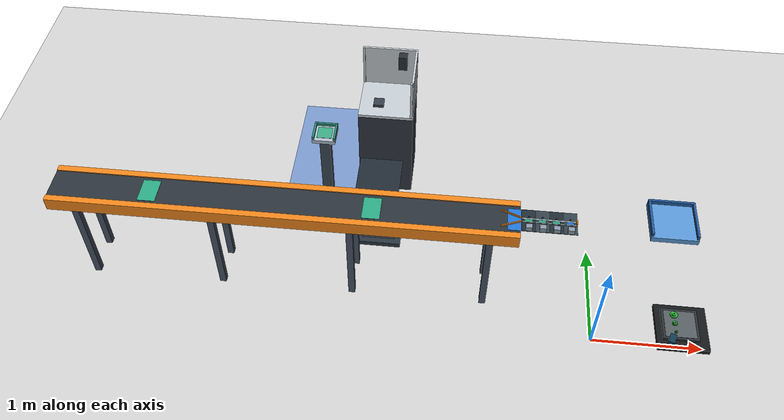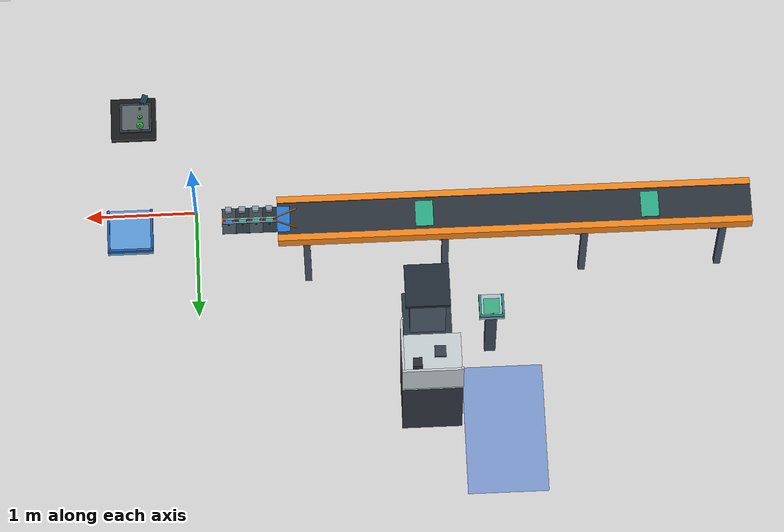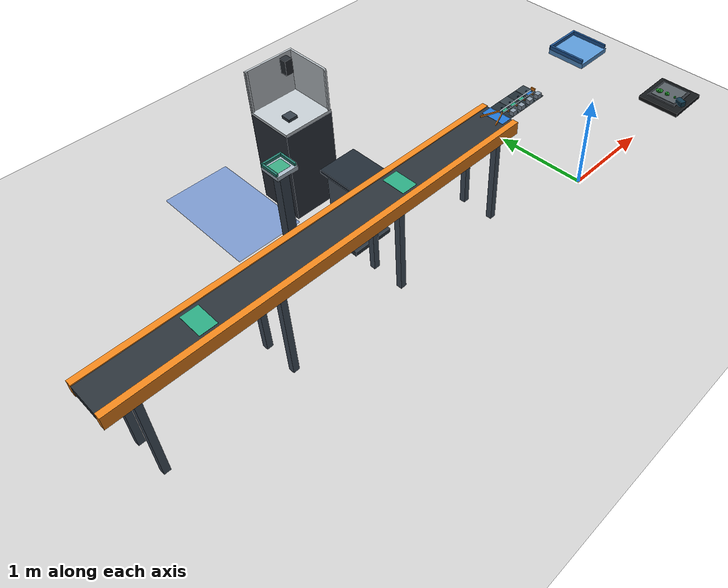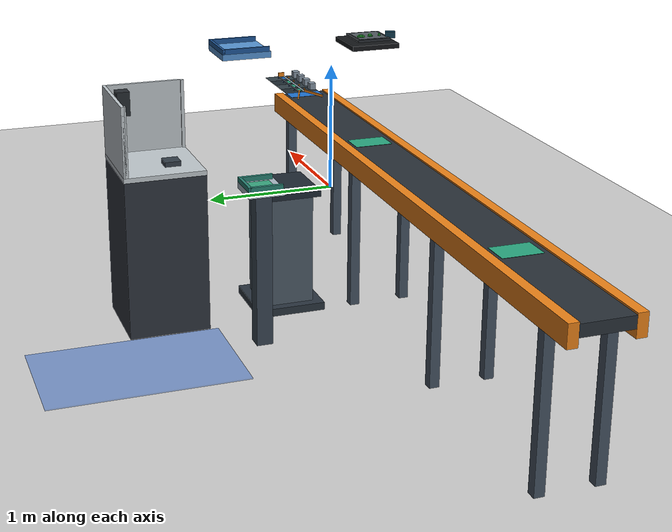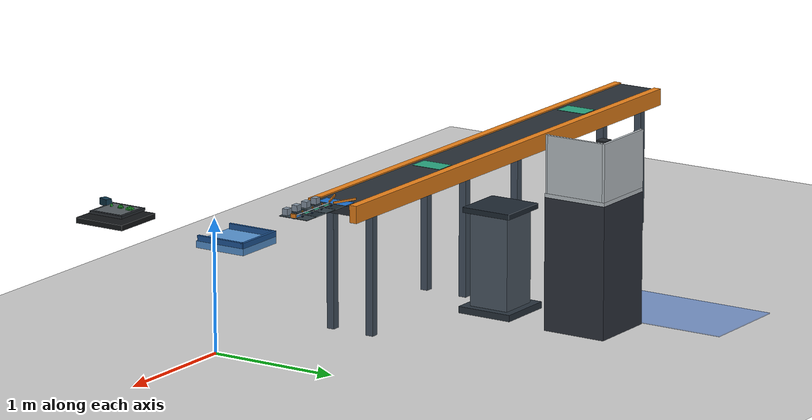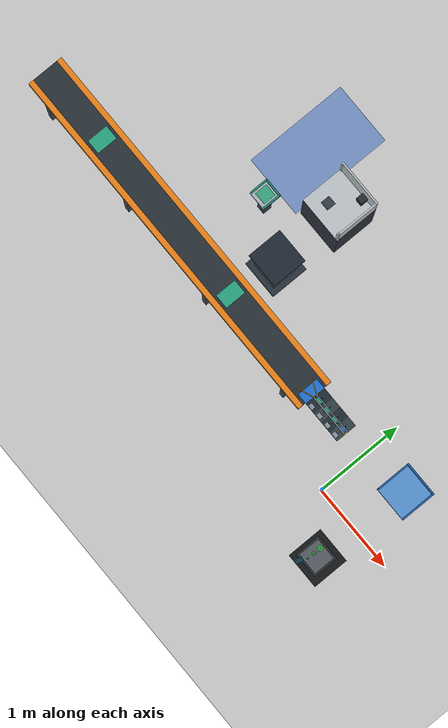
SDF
<sdf version="1.4">
 <world name="default">
  <include><uri>model://ground_plane</uri></include>
  <include><uri>model://sun</uri></include>
  <include>
   <uri>model://bantam_tools_desktop_cnc</uri>
   <name>M2</name>
   <pose>-2.05 1.9 0.0 0.0 0.0 -1.5707963267948966</pose>
  </include>
  <model name="M2_KMR_docking_pose">
   <static>true</static>
   <pose>-2.7 2.20 0.004 0.0 0.0 1.5707963267948966</pose>
   <link name="link">
    <visual name="visual">
     <geometry><box><size>1.19 0.72 0.008</size></box></geometry>
     <material><ambient>0.10 0.35 0.80 0.45</ambient><diffuse>0.10 0.35 0.80 0.45</diffuse></material>
     <transparency>0.55</transparency>
    </visual>
   </link>
  </model>
  <model name="ur5e-2 pedestal">
   <static>true</static>
   <pose>-2.05 1.1 0 0 0 0</pose>
   <link name="link">
    <collision name="column">
     <pose>0 0 0.38 0 0 0</pose>
     <geometry><box><size>0.32 0.32 0.76</size></box></geometry>
    </collision>
    <visual name="column">
     <pose>0 0 0.38 0 0 0</pose>
     <geometry><box><size>0.32 0.32 0.76</size></box></geometry>
     <material><ambient>.3 .35 .4 1</ambient><diffuse>.3 .35 .4 1</diffuse></material>
    </visual>
    <collision name="mounting_plate">
     <pose>0 0 0.78 0 0 0</pose>
     <geometry><box><size>0.4 0.4 0.04</size></box></geometry>
    </collision>
    <visual name="mounting_plate">
     <pose>0 0 0.78 0 0 0</pose>
     <geometry><box><size>0.4 0.4 0.04</size></box></geometry>
     <material><ambient>.12 .16 .2 1</ambient><diffuse>.12 .16 .2 1</diffuse></material>
    </visual>
    <collision name="foot">
     <pose>0 0 0.025 0 0 0</pose>
     <geometry><box><size>0.44 0.44 0.05</size></box></geometry>
    </collision>
    <visual name="foot">
     <pose>0 0 0.025 0 0 0</pose>
     <geometry><box><size>0.44 0.44 0.05</size></box></geometry>
     <material><ambient>.16 .2 .24 1</ambient><diffuse>.16 .2 .24 1</diffuse></material>
    </visual>
   </link>
  </model>
  <model name="M2 staging tray">
   <static>true</static>
   <pose>-2.6 1.4 0 0 0 0</pose>
   <link name="link">
    <collision name="pedestal">
     <pose>0 0 0.48 0 0 0</pose>
     <geometry><box><size>0.10 0.10 0.96</size></box></geometry>
    </collision>
    <visual name="pedestal">
     <pose>0 0 0.48 0 0 0</pose>
     <geometry><box><size>0.10 0.10 0.96</size></box></geometry>
     <material><ambient>.22 .27 .32 1</ambient><diffuse>.22 .27 .32 1</diffuse></material>
    </visual>
    <collision name="surface">
     <pose>0 0 0.98 0 0 0</pose>
     <geometry><box><size>0.22 0.22 0.04</size></box></geometry>
    </collision>
    <visual name="surface">
     <pose>0 0 0.98 0 0 0</pose>
     <geometry><box><size>0.22 0.22 0.04</size></box></geometry>
     <material><ambient>.66 .72 .77 1</ambient><diffuse>.66 .72 .77 1</diffuse></material>
    </visual>
    <collision name="rear_edge">
     <pose>0 0.10 1.015 0 0 0</pose>
     <geometry><box><size>0.22 0.02 0.03</size></box></geometry>
    </collision>
    <visual name="rear_edge">
     <pose>0 0.10 1.015 0 0 0</pose>
     <geometry><box><size>0.22 0.02 0.03</size></box></geometry>
     <material><ambient>.15 .5 .44 1</ambient><diffuse>.15 .5 .44 1</diffuse></material>
    </visual>
    <collision name="left_edge">
     <pose>-0.10 0 1.015 0 0 0</pose>
     <geometry><box><size>0.02 0.20 0.03</size></box></geometry>
    </collision>
    <visual name="left_edge">
     <pose>-0.10 0 1.015 0 0 0</pose>
     <geometry><box><size>0.02 0.20 0.03</size></box></geometry>
     <material><ambient>.15 .5 .44 1</ambient><diffuse>.15 .5 .44 1</diffuse></material>
    </visual>
    <collision name="right_edge">
     <pose>0.10 0 1.015 0 0 0</pose>
     <geometry><box><size>0.02 0.20 0.03</size></box></geometry>
    </collision>
    <visual name="right_edge">
     <pose>0.10 0 1.015 0 0 0</pose>
     <geometry><box><size>0.02 0.20 0.03</size></box></geometry>
     <material><ambient>.15 .5 .44 1</ambient><diffuse>.15 .5 .44 1</diffuse></material>
    </visual>
    <visual name="capacity_one_nest">
     <pose>0 0 1.001 0 0 0</pose>
     <geometry><box><size>0.14 0.14 0.002</size></box></geometry>
     <material><ambient>.22 .65 .5 1</ambient><diffuse>.22 .65 .5 1</diffuse></material>
    </visual>
   </link>
  </model>
  <model name="Conveyor">
   <static>true</static>
   <pose>-2.85 0.5 0 0 0 0</pose>
   <link name="link">
    <collision name="belt">
     <pose>0 0 0.98 0 0 0</pose>
     <geometry><box><size>4.2 0.3 0.07</size></box></geometry>
    </collision>
    <visual name="belt">
     <pose>0 0 0.98 0 0 0</pose>
     <geometry><box><size>4.2 0.3 0.07</size></box></geometry>
     <material><ambient>.16 .19 .22 1</ambient><diffuse>.16 .19 .22 1</diffuse></material>
    </visual>
    <collision name="frame_0">
     <pose>0 -0.18 0.96 0 0 0</pose>
     <geometry><box><size>4.2 0.06 0.13</size></box></geometry>
    </collision>
    <visual name="frame_0">
     <pose>0 -0.18 0.96 0 0 0</pose>
     <geometry><box><size>4.2 0.06 0.13</size></box></geometry>
     <material><ambient>.92 .51 .1 1</ambient><diffuse>.92 .51 .1 1</diffuse></material>
    </visual>
    <collision name="frame_1">
     <pose>0 0.18 0.96 0 0 0</pose>
     <geometry><box><size>4.2 0.06 0.13</size></box></geometry>
    </collision>
    <visual name="frame_1">
     <pose>0 0.18 0.96 0 0 0</pose>
     <geometry><box><size>4.2 0.06 0.13</size></box></geometry>
     <material><ambient>.92 .51 .1 1</ambient><diffuse>.92 .51 .1 1</diffuse></material>
    </visual>
    <collision name="leg_0_0">
     <pose>-1.85 -0.17 0.46 0 0 0</pose>
     <geometry><box><size>0.06 0.06 0.92</size></box></geometry>
    </collision>
    <visual name="leg_0_0">
     <pose>-1.85 -0.17 0.46 0 0 0</pose>
     <geometry><box><size>0.06 0.06 0.92</size></box></geometry>
     <material><ambient>.27 .32 .38 1</ambient><diffuse>.27 .32 .38 1</diffuse></material>
    </visual>
    <collision name="leg_0_1">
     <pose>-1.85 0.17 0.46 0 0 0</pose>
     <geometry><box><size>0.06 0.06 0.92</size></box></geometry>
    </collision>
    <visual name="leg_0_1">
     <pose>-1.85 0.17 0.46 0 0 0</pose>
     <geometry><box><size>0.06 0.06 0.92</size></box></geometry>
     <material><ambient>.27 .32 .38 1</ambient><diffuse>.27 .32 .38 1</diffuse></material>
    </visual>
    <collision name="leg_1_0">
     <pose>-0.62 -0.17 0.46 0 0 0</pose>
     <geometry><box><size>0.06 0.06 0.92</size></box></geometry>
    </collision>
    <visual name="leg_1_0">
     <pose>-0.62 -0.17 0.46 0 0 0</pose>
     <geometry><box><size>0.06 0.06 0.92</size></box></geometry>
     <material><ambient>.27 .32 .38 1</ambient><diffuse>.27 .32 .38 1</diffuse></material>
    </visual>
    <collision name="leg_1_1">
     <pose>-0.62 0.17 0.46 0 0 0</pose>
     <geometry><box><size>0.06 0.06 0.92</size></box></geometry>
    </collision>
    <visual name="leg_1_1">
     <pose>-0.62 0.17 0.46 0 0 0</pose>
     <geometry><box><size>0.06 0.06 0.92</size></box></geometry>
     <material><ambient>.27 .32 .38 1</ambient><diffuse>.27 .32 .38 1</diffuse></material>
    </visual>
    <collision name="leg_2_0">
     <pose>0.62 -0.17 0.46 0 0 0</pose>
     <geometry><box><size>0.06 0.06 0.92</size></box></geometry>
    </collision>
    <visual name="leg_2_0">
     <pose>0.62 -0.17 0.46 0 0 0</pose>
     <geometry><box><size>0.06 0.06 0.92</size></box></geometry>
     <material><ambient>.27 .32 .38 1</ambient><diffuse>.27 .32 .38 1</diffuse></material>
    </visual>
    <collision name="leg_2_1">
     <pose>0.62 0.17 0.46 0 0 0</pose>
     <geometry><box><size>0.06 0.06 0.92</size></box></geometry>
    </collision>
    <visual name="leg_2_1">
     <pose>0.62 0.17 0.46 0 0 0</pose>
     <geometry><box><size>0.06 0.06 0.92</size></box></geometry>
     <material><ambient>.27 .32 .38 1</ambient><diffuse>.27 .32 .38 1</diffuse></material>
    </visual>
    <collision name="leg_3_0">
     <pose>1.85 -0.17 0.46 0 0 0</pose>
     <geometry><box><size>0.06 0.06 0.92</size></box></geometry>
    </collision>
    <visual name="leg_3_0">
     <pose>1.85 -0.17 0.46 0 0 0</pose>
     <geometry><box><size>0.06 0.06 0.92</size></box></geometry>
     <material><ambient>.27 .32 .38 1</ambient><diffuse>.27 .32 .38 1</diffuse></material>
    </visual>
    <collision name="leg_3_1">
     <pose>1.85 0.17 0.46 0 0 0</pose>
     <geometry><box><size>0.06 0.06 0.92</size></box></geometry>
    </collision>
    <visual name="leg_3_1">
     <pose>1.85 0.17 0.46 0 0 0</pose>
     <geometry><box><size>0.06 0.06 0.92</size></box></geometry>
     <material><ambient>.27 .32 .38 1</ambient><diffuse>.27 .32 .38 1</diffuse></material>
    </visual>
    <visual name="loading_position_1">
     <pose>-1.2 0 1.016 0 0 0</pose>
     <geometry><box><size>0.16 0.24 0.002</size></box></geometry>
     <material><ambient>.16 .65 .5 1</ambient><diffuse>.16 .65 .5 1</diffuse></material>
    </visual>
    <visual name="loading_position_2">
     <pose>0.8 0 1.016 0 0 0</pose>
     <geometry><box><size>0.16 0.24 0.002</size></box></geometry>
     <material><ambient>.16 .65 .5 1</ambient><diffuse>.16 .65 .5 1</diffuse></material>
    </visual>
    <visual name="output_nest">
     <pose>2.07 0 1.015 0 0 0</pose>
     <geometry><box><size>0.16 0.24 0.002</size></box></geometry>
     <material><ambient>.12 .45 .82 1</ambient><diffuse>.12 .45 .82 1</diffuse></material>
    </visual>
   </link>
  </model>
  <model name="Buffer For Machined parts">
   <static>true</static>
   <pose>-0.50 0.50 1.015 0 0 0</pose>
   <link name="link">
    <collision name="zone_1_belt">
     <pose>-.18 0 0 0 0 0</pose>
     <geometry><box><size>.119 .24 .004</size></box></geometry>
    </collision>
    <visual name="zone_1_belt">
     <pose>-.18 0 0 0 0 0</pose>
     <geometry><box><size>.119 .24 .004</size></box></geometry>
     <material><ambient>.12 .17 .20 1</ambient><diffuse>.12 .17 .20 1</diffuse></material>
    </visual>
    <collision name="zone_2_belt">
     <pose>-.06 0 0 0 0 0</pose>
     <geometry><box><size>.119 .24 .004</size></box></geometry>
    </collision>
    <visual name="zone_2_belt">
     <pose>-.06 0 0 0 0 0</pose>
     <geometry><box><size>.119 .24 .004</size></box></geometry>
     <material><ambient>.20 .25 .28 1</ambient><diffuse>.20 .25 .28 1</diffuse></material>
    </visual>
    <collision name="zone_3_belt">
     <pose>.06 0 0 0 0 0</pose>
     <geometry><box><size>.119 .24 .004</size></box></geometry>
    </collision>
    <visual name="zone_3_belt">
     <pose>.06 0 0 0 0 0</pose>
     <geometry><box><size>.119 .24 .004</size></box></geometry>
     <material><ambient>.12 .17 .20 1</ambient><diffuse>.12 .17 .20 1</diffuse></material>
    </visual>
    <collision name="zone_4_belt">
     <pose>.18 0 0 0 0 0</pose>
     <geometry><box><size>.119 .24 .004</size></box></geometry>
    </collision>
    <visual name="zone_4_belt">
     <pose>.18 0 0 0 0 0</pose>
     <geometry><box><size>.119 .24 .004</size></box></geometry>
     <material><ambient>.20 .25 .28 1</ambient><diffuse>.20 .25 .28 1</diffuse></material>
    </visual>
    <collision name="guide_left">
     <pose>0 .019 .003 0.25 0 0</pose>
     <geometry><box><size>.48 .012 .004</size></box></geometry>
    </collision>
    <visual name="guide_left">
     <pose>0 .019 .003 0.25 0 0</pose>
     <geometry><box><size>.48 .012 .004</size></box></geometry>
     <material><ambient>.62 .68 .72 1</ambient><diffuse>.62 .68 .72 1</diffuse></material>
    </visual>
    <collision name="guide_right">
     <pose>0 -.019 .003 -0.25 0 0</pose>
     <geometry><box><size>.48 .012 .004</size></box></geometry>
    </collision>
    <visual name="guide_right">
     <pose>0 -.019 .003 -0.25 0 0</pose>
     <geometry><box><size>.48 .012 .004</size></box></geometry>
     <material><ambient>.62 .68 .72 1</ambient><diffuse>.62 .68 .72 1</diffuse></material>
    </visual>
    <visual name="zone_1_drive">
     <pose>-.18 -.095 .025 0 0 0</pose>
     <geometry><box><size>.055 .045 .046</size></box></geometry>
     <material><ambient>.52 .58 .64 1</ambient><diffuse>.52 .58 .64 1</diffuse></material>
    </visual>
    <visual name="zone_2_drive">
     <pose>-.06 -.095 .025 0 0 0</pose>
     <geometry><box><size>.055 .045 .046</size></box></geometry>
     <material><ambient>.52 .58 .64 1</ambient><diffuse>.52 .58 .64 1</diffuse></material>
    </visual>
    <visual name="zone_3_drive">
     <pose>.06 -.095 .025 0 0 0</pose>
     <geometry><box><size>.055 .045 .046</size></box></geometry>
     <material><ambient>.52 .58 .64 1</ambient><diffuse>.52 .58 .64 1</diffuse></material>
    </visual>
    <visual name="zone_4_drive">
     <pose>.18 -.095 .025 0 0 0</pose>
     <geometry><box><size>.055 .045 .046</size></box></geometry>
     <material><ambient>.52 .58 .64 1</ambient><diffuse>.52 .58 .64 1</diffuse></material>
    </visual>
    <visual name="zone_1_photoeye">
     <pose>-.18 .040 .004 0 0 0</pose>
     <geometry><box><size>.014 .008 .012</size></box></geometry>
     <material><ambient>.12 .22 .36 1</ambient><diffuse>.12 .22 .36 1</diffuse></material>
    </visual>
    <visual name="zone_2_photoeye">
     <pose>-.06 .040 .004 0 0 0</pose>
     <geometry><box><size>.014 .008 .012</size></box></geometry>
     <material><ambient>.12 .22 .36 1</ambient><diffuse>.12 .22 .36 1</diffuse></material>
    </visual>
    <visual name="zone_3_photoeye">
     <pose>.06 .040 .004 0 0 0</pose>
     <geometry><box><size>.014 .008 .012</size></box></geometry>
     <material><ambient>.12 .22 .36 1</ambient><diffuse>.12 .22 .36 1</diffuse></material>
    </visual>
    <visual name="zone_4_photoeye">
     <pose>.18 .040 .004 0 0 0</pose>
     <geometry><box><size>.014 .008 .012</size></box></geometry>
     <material><ambient>.12 .22 .36 1</ambient><diffuse>.12 .22 .36 1</diffuse></material>
    </visual>
    <visual name="zone_1_reflector">
     <pose>-.18 -.040 .004 0 0 0</pose>
     <geometry><box><size>.014 .008 .012</size></box></geometry>
     <material><ambient>.92 .51 .1 1</ambient><diffuse>.92 .51 .1 1</diffuse></material>
    </visual>
    <visual name="zone_2_reflector">
     <pose>-.06 -.040 .004 0 0 0</pose>
     <geometry><box><size>.014 .008 .012</size></box></geometry>
     <material><ambient>.92 .51 .1 1</ambient><diffuse>.92 .51 .1 1</diffuse></material>
    </visual>
    <visual name="zone_3_reflector">
     <pose>.06 -.040 .004 0 0 0</pose>
     <geometry><box><size>.014 .008 .012</size></box></geometry>
     <material><ambient>.92 .51 .1 1</ambient><diffuse>.92 .51 .1 1</diffuse></material>
    </visual>
    <visual name="zone_4_reflector">
     <pose>.18 -.040 .004 0 0 0</pose>
     <geometry><box><size>.014 .008 .012</size></box></geometry>
     <material><ambient>.92 .51 .1 1</ambient><diffuse>.92 .51 .1 1</diffuse></material>
    </visual>
    <collision name="zone_1_stop">
     <pose>-.133 0 -.003 0 0 0</pose>
     <geometry><box><size>.004 .026 .008</size></box></geometry>
    </collision>
    <visual name="zone_1_stop">
     <pose>-.133 0 -.003 0 0 0</pose>
     <geometry><box><size>.004 .026 .008</size></box></geometry>
     <material><ambient>.52 .58 .64 1</ambient><diffuse>.52 .58 .64 1</diffuse></material>
    </visual>
    <collision name="zone_2_stop">
     <pose>-.013 0 -.003 0 0 0</pose>
     <geometry><box><size>.004 .026 .008</size></box></geometry>
    </collision>
    <visual name="zone_2_stop">
     <pose>-.013 0 -.003 0 0 0</pose>
     <geometry><box><size>.004 .026 .008</size></box></geometry>
     <material><ambient>.52 .58 .64 1</ambient><diffuse>.52 .58 .64 1</diffuse></material>
    </visual>
    <collision name="zone_3_stop">
     <pose>.107 0 -.003 0 0 0</pose>
     <geometry><box><size>.004 .026 .008</size></box></geometry>
    </collision>
    <visual name="zone_3_stop">
     <pose>.107 0 -.003 0 0 0</pose>
     <geometry><box><size>.004 .026 .008</size></box></geometry>
     <material><ambient>.52 .58 .64 1</ambient><diffuse>.52 .58 .64 1</diffuse></material>
    </visual>
    <collision name="zone_4_stop">
     <pose>.227 0 -.003 0 0 0</pose>
     <geometry><box><size>.004 .026 .008</size></box></geometry>
    </collision>
    <visual name="zone_4_stop">
     <pose>.227 0 -.003 0 0 0</pose>
     <geometry><box><size>.004 .026 .008</size></box></geometry>
     <material><ambient>.52 .58 .64 1</ambient><diffuse>.52 .58 .64 1</diffuse></material>
    </visual>
    <collision name="downstream_stop">
     <pose>.235 0 .017 0 0 0</pose>
     <geometry><box><size>.01 .045 .03</size></box></geometry>
    </collision>
    <visual name="downstream_stop">
     <pose>.235 0 .017 0 0 0</pose>
     <geometry><box><size>.01 .045 .03</size></box></geometry>
     <material><ambient>.92 .51 .1 1</ambient><diffuse>.92 .51 .1 1</diffuse></material>
    </visual>
    <collision name="transfer_plate">
     <pose>-0.244803883865 0 0.000019419324 0 -0.197395559850 0</pose>
     <geometry><box><size>0.010198039027 .24 .002</size></box></geometry>
    </collision>
    <visual name="transfer_plate">
     <pose>-0.244803883865 0 0.000019419324 0 -0.197395559850 0</pose>
     <geometry><box><size>0.010198039027 .24 .002</size></box></geometry>
     <material><ambient>.48 .52 .56 1</ambient><diffuse>.48 .52 .56 1</diffuse></material>
    </visual>
    <collision name="infeed_guide_left">
     <pose>-.33 .0545 .010 0 0 -.375912</pose>
     <geometry><box><size>.19352 .008 .016</size></box></geometry>
    </collision>
    <visual name="infeed_guide_left">
     <pose>-.33 .0545 .010 0 0 -.375912</pose>
     <geometry><box><size>.19352 .008 .016</size></box></geometry>
     <material><ambient>.92 .51 .1 1</ambient><diffuse>.92 .51 .1 1</diffuse></material>
    </visual>
    <collision name="infeed_guide_right">
     <pose>-.33 -.0545 .010 0 0 .375912</pose>
     <geometry><box><size>.19352 .008 .016</size></box></geometry>
    </collision>
    <visual name="infeed_guide_right">
     <pose>-.33 -.0545 .010 0 0 .375912</pose>
     <geometry><box><size>.19352 .008 .016</size></box></geometry>
     <material><ambient>.92 .51 .1 1</ambient><diffuse>.92 .51 .1 1</diffuse></material>
    </visual>
    <visual name="waiting_position_1">
     <pose>-0.18 0 .00215 0 0 0</pose>
     <geometry><box><size>.065 .026 .0003</size></box></geometry>
     <material><ambient>.16 .65 .50 1</ambient><diffuse>.16 .65 .50 1</diffuse></material>
    </visual>
    <visual name="waiting_position_2">
     <pose>-0.06 0 .00215 0 0 0</pose>
     <geometry><box><size>.065 .026 .0003</size></box></geometry>
     <material><ambient>.16 .65 .50 1</ambient><diffuse>.16 .65 .50 1</diffuse></material>
    </visual>
    <visual name="waiting_position_3">
     <pose>0.06 0 .00215 0 0 0</pose>
     <geometry><box><size>.065 .026 .0003</size></box></geometry>
     <material><ambient>.16 .65 .50 1</ambient><diffuse>.16 .65 .50 1</diffuse></material>
    </visual>
    <visual name="waiting_position_4">
     <pose>0.18 0 .00215 0 0 0</pose>
     <geometry><box><size>.065 .026 .0003</size></box></geometry>
     <material><ambient>.12 .45 .82 1</ambient><diffuse>.12 .45 .82 1</diffuse></material>
    </visual>
   </link>
  </model>
  <model name="assembly_board_v1">
   <static>true</static>
   <pose>0 0 1.0239916 0 0 0</pose>
   <link name="link">
    <gravity>false</gravity>
    <inertial>
     <mass>0.40</mass>
     <inertia><ixx>0.00834</ixx><iyy>0.00834</iyy><izz>0.01667</izz><ixy>0</ixy><ixz>0</ixz><iyz>0</iyz></inertia>
    </inertial>
   </link>
  </model>
  <model name="cam_mk4_2">
   <static>true</static>
   <pose>0.50 -0.50 1.75 0 1.5708 0</pose>
   <link name="link">
    <visual name="visual">
     <geometry><box><size>0.03 0.03 0.03</size></box></geometry>
     <material>
      <script><uri>file://media/materials/scripts/gazebo.material</uri><name>Gazebo/Blue</name></script>
     </material>
     <transparency>1.0</transparency>
    </visual>
    <sensor type="depth" name="depth_camera">
     <update_rate>15.0</update_rate>
     <camera>
      <horizontal_fov>0.8</horizontal_fov>
      <image><width>640</width><height>480</height><format>R8G8B8</format></image>
      <clip><near>0.05</near><far>5.0</far></clip>
     </camera>
     <plugin name="camera_controller" filename="libgazebo_ros_camera.so">
      <ros><namespace>cam_mk4_2</namespace></ros>
      <camera_name>cam_mk4_2</camera_name>
      <frame_name>cam_mk4_2_link</frame_name>
      <min_depth>0.05</min_depth>
     </plugin>
    </sensor>
   </link>
  </model>
  <model name="cam_assembly">
   <static>true</static>
   <pose>0 0 1.55 0 1.5708 0</pose>
   <link name="link">
    <visual name="visual">
     <geometry><box><size>0.03 0.03 0.03</size></box></geometry>
     <material>
      <script><uri>file://media/materials/scripts/gazebo.material</uri><name>Gazebo/Red</name></script>
     </material>
     <transparency>1.0</transparency>
    </visual>
    <sensor type="depth" name="depth_camera">
     <update_rate>15.0</update_rate>
     <camera>
      <horizontal_fov>0.95</horizontal_fov>
      <image><width>640</width><height>480</height><format>R8G8B8</format></image>
      <clip><near>0.05</near><far>2.0</far></clip>
     </camera>
     <plugin name="camera_controller" filename="libgazebo_ros_camera.so">
      <ros><namespace>cam_assembly</namespace></ros>
      <camera_name>cam_assembly</camera_name>
      <frame_name>cam_assembly_link</frame_name>
     </plugin>
    </sensor>
   </link>
  </model>
  <model name="Exit">
   <static>true</static>
   <pose>0.55 0.58 1.04 0 0 0</pose>
   <link name="link">
    <collision name="surface"><geometry><box><size>0.4 0.4 0.05</size></box></geometry></collision>
    <visual name="surface">
     <geometry><box><size>0.4 0.4 0.05</size></box></geometry>
     <material><ambient>.34 .58 .82 1</ambient><diffuse>.34 .58 .82 1</diffuse></material>
    </visual>
    <collision name="rear_edge">
     <pose>0 0.19 0.045 0 0 0</pose>
     <geometry><box><size>0.4 0.02 0.04</size></box></geometry>
    </collision>
    <visual name="rear_edge">
     <pose>0 0.19 0.045 0 0 0</pose>
     <geometry><box><size>0.4 0.02 0.04</size></box></geometry>
     <material><ambient>.12 .34 .60 1</ambient><diffuse>.12 .34 .60 1</diffuse></material>
    </visual>
    <collision name="side_edge_1">
     <pose>-0.19 0 0.045 0 0 0</pose>
     <geometry><box><size>0.02 0.38 0.04</size></box></geometry>
    </collision>
    <visual name="side_edge_1">
     <pose>-0.19 0 0.045 0 0 0</pose>
     <geometry><box><size>0.02 0.38 0.04</size></box></geometry>
     <material><ambient>.12 .34 .60 1</ambient><diffuse>.12 .34 .60 1</diffuse></material>
    </visual>
    <collision name="side_edge_2">
     <pose>0.19 0 0.045 0 0 0</pose>
     <geometry><box><size>0.02 0.38 0.04</size></box></geometry>
    </collision>
    <visual name="side_edge_2">
     <pose>0.19 0 0.045 0 0 0</pose>
     <geometry><box><size>0.02 0.38 0.04</size></box></geometry>
     <material><ambient>.12 .34 .60 1</ambient><diffuse>.12 .34 .60 1</diffuse></material>
    </visual>
   </link>
  </model>
  <include>
   <uri>model://prusa_mk4_2</uri>
   <name>prusa_mk4_2</name>
   <pose>0.50 -0.50 1.04 0 0 -1.57079632679</pose>
  </include>
  <model name="gear_small">
   <pose>0.44 -0.58 1.11 0 0 0</pose>
   <link name="link">
    <inertial>
     <mass>0.05</mass>
     <inertia>
      <ixx>3.1623847563e-06</ixx>
      <ixy>0</ixy>
      <ixz>0</ixz>
      <iyy>3.1623847563e-06</iyy>
      <iyz>0</iyz>
      <izz>2.9914361793e-06</izz>
     </inertia>
    </inertial>
    <collision name="collision">
     <max_contacts>64</max_contacts>
     <pose>-0.21316049955 0.1518883057 0.0697159157 3.141592653589793 0 0</pose>
     <geometry>
      <mesh><uri>model://gear_small/meshes/Gear_Small_contact.STL</uri><scale>0.001 0.001 0.001</scale></mesh>
     </geometry>
     <surface>
      <friction><ode><mu>0.5</mu><mu2>0.5</mu2></ode></friction>
      <contact>
       <category_bitmask>256</category_bitmask>
       <collide_bitmask>65279</collide_bitmask>
       <ode><kp>100000.0</kp><kd>1000.0</kd><max_vel>0.001</max_vel><min_depth>0.0</min_depth></ode>
      </contact>
     </surface>
    </collision>
    <visual name="visual">
     <pose>-0.21316049955 0.1518883057 0.0697159157 3.141592653589793 0 0</pose>
     <geometry>
      <mesh><uri>model://gear_small/meshes/Gear_Small.STL</uri><scale>0.001 0.001 0.001</scale></mesh>
     </geometry>
     <material>
      <script><uri>file://media/materials/scripts/gazebo.material</uri><name>Gazebo/Green</name></script>
     </material>
    </visual>
   </link>
  </model>
  <model name="gear_medium">
   <pose>0.44 -0.50 1.11 0 0 0</pose>
   <link name="link">
    <inertial>
     <mass>0.10</mass>
     <inertia>
      <ixx>1.4356194535e-05</ixx>
      <ixy>0</ixy>
      <ixz>0</ixz>
      <iyy>1.4356194535e-05</iyy>
      <iyz>0</iyz>
      <izz>2.2045722402e-05</izz>
     </inertia>
    </inertial>
    <collision name="collision">
     <max_contacts>64</max_contacts>
     <pose>-0.21316049955 0.18188829805 0.0697159157 3.141592653589793 0 0</pose>
     <geometry>
      <mesh><uri>model://gear_medium/meshes/Gear_Medium_contact.STL</uri><scale>0.001 0.001 0.001</scale></mesh>
     </geometry>
     <surface>
      <friction><ode><mu>0.5</mu><mu2>0.5</mu2></ode></friction>
      <contact>
       <category_bitmask>256</category_bitmask>
       <collide_bitmask>65279</collide_bitmask>
       <ode><kp>100000.0</kp><kd>1000.0</kd><max_vel>0.001</max_vel><min_depth>0.0</min_depth></ode>
      </contact>
     </surface>
    </collision>
    <visual name="visual">
     <pose>-0.21316049955 0.18188829805 0.0697159157 3.141592653589793 0 0</pose>
     <geometry>
      <mesh><uri>model://gear_medium/meshes/Gear_Medium.STL</uri><scale>0.001 0.001 0.001</scale></mesh>
     </geometry>
     <material>
      <script><uri>file://media/materials/scripts/gazebo.material</uri><name>Gazebo/Green</name></script>
     </material>
    </visual>
   </link>
  </model>
  <model name="gear_large">
   <pose>0.44 -0.42 1.11 0 0 0</pose>
   <link name="link">
    <inertial>
     <mass>0.15</mass>
     <inertia>
      <ixx>4.1030990294e-05</ixx>
      <ixy>0</ixy>
      <ixz>0</ixz>
      <iyy>4.1030990294e-05</iyy>
      <iyz>0</iyz>
      <izz>7.2061980588e-05</izz>
     </inertia>
    </inertial>
    <collision name="collision">
     <max_contacts>64</max_contacts>
     <pose>-0.2131604996 0.231888298 0.0697159157 3.141592653589793 0 0</pose>
     <geometry>
      <mesh><uri>model://gear_large/meshes/Gear_Large_contact.STL</uri><scale>0.001 0.001 0.001</scale></mesh>
     </geometry>
     <surface>
      <friction><ode><mu>0.5</mu><mu2>0.5</mu2></ode></friction>
      <contact>
       <category_bitmask>256</category_bitmask>
       <collide_bitmask>65279</collide_bitmask>
       <ode><kp>100000.0</kp><kd>1000.0</kd><max_vel>0.001</max_vel><min_depth>0.0</min_depth></ode>
      </contact>
     </surface>
    </collision>
    <visual name="visual">
     <pose>-0.2131604996 0.231888298 0.0697159157 3.141592653589793 0 0</pose>
     <geometry>
      <mesh><uri>model://gear_large/meshes/Gear_Large.STL</uri><scale>0.001 0.001 0.001</scale></mesh>
     </geometry>
     <material>
      <script><uri>file://media/materials/scripts/gazebo.material</uri><name>Gazebo/Green</name></script>
     </material>
    </visual>
   </link>
  </model>
 </world>
</sdf>
